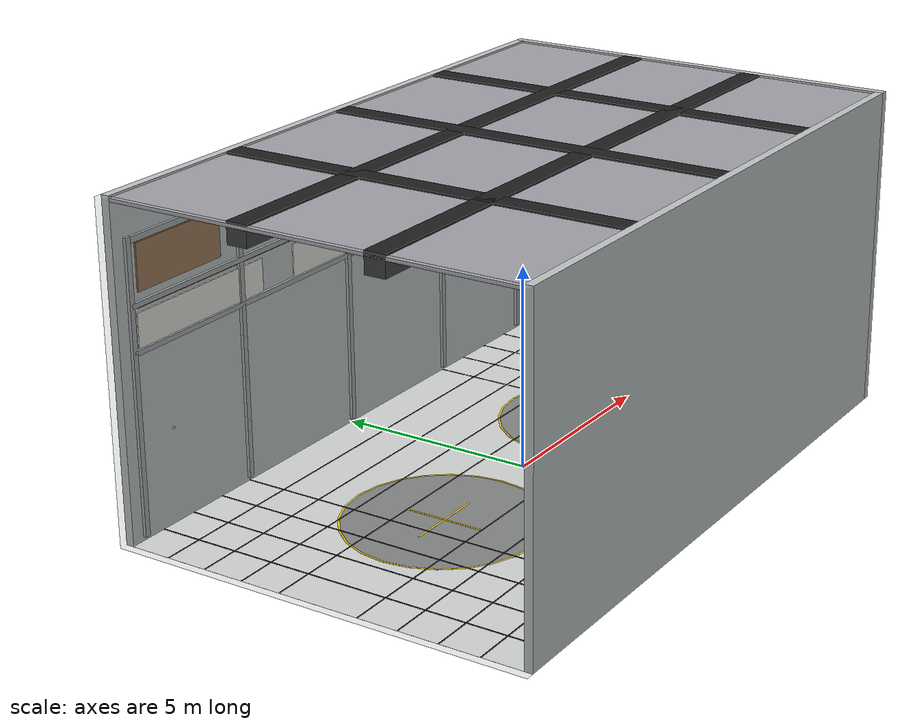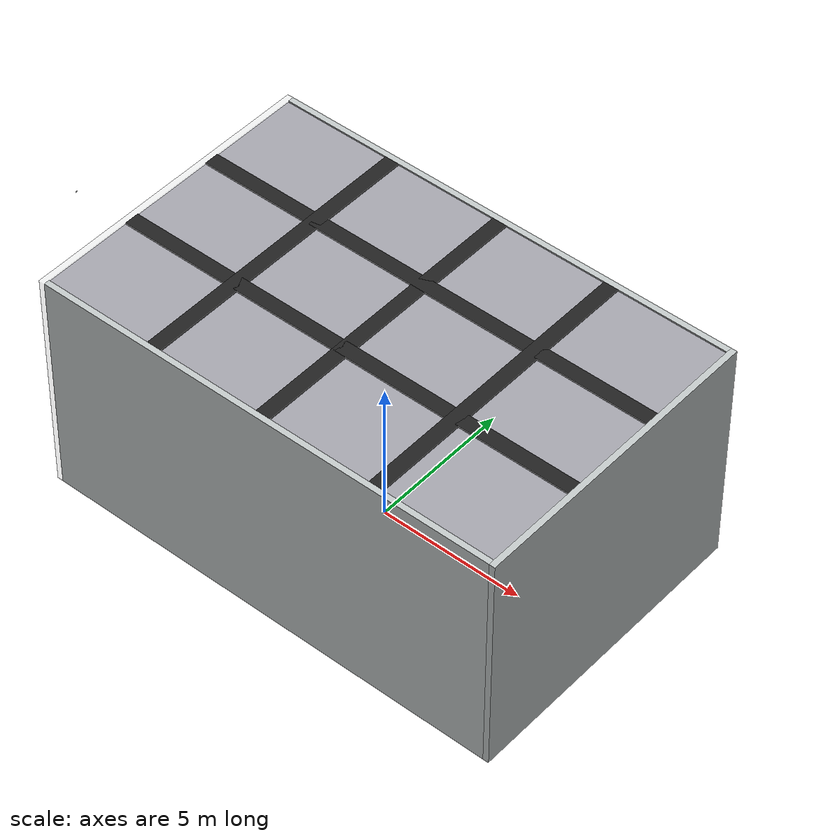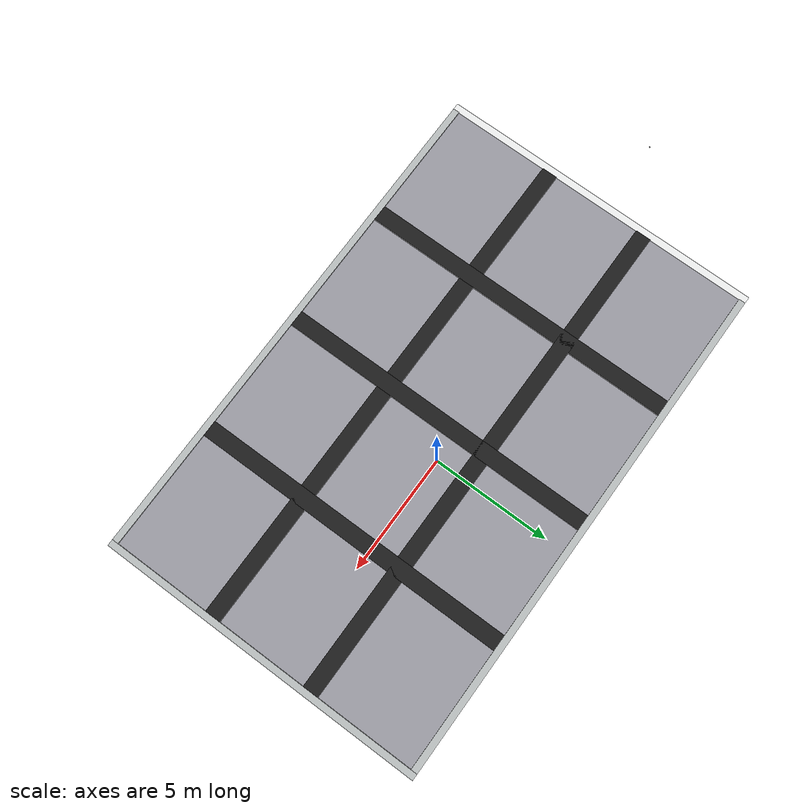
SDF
<sdf version="1.9">
 <world name="hangar_small">
  <physics type="ode">
   <max_step_size>0.004</max_step_size>
   <real_time_factor>1.0</real_time_factor>
   <real_time_update_rate>250</real_time_update_rate>
  </physics>
  <gravity>0 0 -9.8</gravity>
  <magnetic_field>6e-06 2.3e-05 -4.2e-05</magnetic_field>
  <atmosphere type="adiabatic"/>
  <scene>
   <grid>false</grid>
   <ambient>0.65 0.65 0.65 1</ambient>
   <background>0.35 0.35 0.35 1</background>
   <shadows>false</shadows>
  </scene>
  <model name="ground_plane">
   <static>true</static>
   <link name="link">
    <collision name="collision">
     <geometry><plane><normal>0 0 1</normal><size>16.0 10.0</size></plane></geometry>
    </collision>
   </link>
  </model>
  <model name="white_floor_visual">
   <static>true</static>
   <pose>0 0 0.0015 0 0 0</pose>
   <link name="floor">
    <visual name="white_floor">
     <geometry><box><size>16.0 10.0 0.001</size></box></geometry>
     <material>
      <ambient>0.92 0.92 0.92 1</ambient>
      <diffuse>0.92 0.92 0.92 1</diffuse>
      <specular>0.05 0.05 0.05 1</specular>
     </material>
    </visual>
   </link>
  </model>
  <model name="flow_feature_grid">
   <static>true</static>
   <pose>0 0 0.009 0 0 0</pose>
   <link name="grid">
    <visual name="gx_south_1">
     <visibility_flags>4</visibility_flags>
     <pose>-7.0 0 0 0 0 0</pose>
     <geometry><box><size>0.035 10.0 0.001</size></box></geometry>
     <material><ambient>0.03 0.03 0.03 1</ambient><diffuse>0.03 0.03 0.03 1</diffuse></material>
    </visual>
    <visual name="gx_south_2">
     <visibility_flags>4</visibility_flags>
     <pose>-6.0 0 0 0 0 0</pose>
     <geometry><box><size>0.035 10.0 0.001</size></box></geometry>
     <material><ambient>0.03 0.03 0.03 1</ambient><diffuse>0.03 0.03 0.03 1</diffuse></material>
    </visual>
    <visual name="gx_south_3">
     <visibility_flags>4</visibility_flags>
     <pose>-5.0 0 0 0 0 0</pose>
     <geometry><box><size>0.035 10.0 0.001</size></box></geometry>
     <material><ambient>0.03 0.03 0.03 1</ambient><diffuse>0.03 0.03 0.03 1</diffuse></material>
    </visual>
    <visual name="gx_south_4">
     <visibility_flags>4</visibility_flags>
     <pose>-4.0 0 0 0 0 0</pose>
     <geometry><box><size>0.035 10.0 0.001</size></box></geometry>
     <material><ambient>0.03 0.03 0.03 1</ambient><diffuse>0.03 0.03 0.03 1</diffuse></material>
    </visual>
    <visual name="gx_north_1">
     <visibility_flags>4</visibility_flags>
     <pose>4.0 0 0 0 0 0</pose>
     <geometry><box><size>0.035 10.0 0.001</size></box></geometry>
     <material><ambient>0.03 0.03 0.03 1</ambient><diffuse>0.03 0.03 0.03 1</diffuse></material>
    </visual>
    <visual name="gx_north_2">
     <visibility_flags>4</visibility_flags>
     <pose>5.0 0 0 0 0 0</pose>
     <geometry><box><size>0.035 10.0 0.001</size></box></geometry>
     <material><ambient>0.03 0.03 0.03 1</ambient><diffuse>0.03 0.03 0.03 1</diffuse></material>
    </visual>
    <visual name="gx_north_3">
     <visibility_flags>4</visibility_flags>
     <pose>6.0 0 0 0 0 0</pose>
     <geometry><box><size>0.035 10.0 0.001</size></box></geometry>
     <material><ambient>0.03 0.03 0.03 1</ambient><diffuse>0.03 0.03 0.03 1</diffuse></material>
    </visual>
    <visual name="gx_north_4">
     <visibility_flags>4</visibility_flags>
     <pose>7.0 0 0 0 0 0</pose>
     <geometry><box><size>0.035 10.0 0.001</size></box></geometry>
     <material><ambient>0.03 0.03 0.03 1</ambient><diffuse>0.03 0.03 0.03 1</diffuse></material>
    </visual>
    <visual name="gy_west_1">
     <visibility_flags>4</visibility_flags>
     <pose>0 -4.0 0 0 0 0</pose>
     <geometry><box><size>16.0 0.035 0.001</size></box></geometry>
     <material><ambient>0.03 0.03 0.03 1</ambient><diffuse>0.03 0.03 0.03 1</diffuse></material>
    </visual>
    <visual name="gy_west_2">
     <visibility_flags>4</visibility_flags>
     <pose>0 -3.0 0 0 0 0</pose>
     <geometry><box><size>16.0 0.035 0.001</size></box></geometry>
     <material><ambient>0.03 0.03 0.03 1</ambient><diffuse>0.03 0.03 0.03 1</diffuse></material>
    </visual>
    <visual name="gy_west_3">
     <visibility_flags>4</visibility_flags>
     <pose>0 -2.0 0 0 0 0</pose>
     <geometry><box><size>16.0 0.035 0.001</size></box></geometry>
     <material><ambient>0.03 0.03 0.03 1</ambient><diffuse>0.03 0.03 0.03 1</diffuse></material>
    </visual>
    <visual name="gy_west_4">
     <visibility_flags>4</visibility_flags>
     <pose>0 -1.0 0 0 0 0</pose>
     <geometry><box><size>16.0 0.035 0.001</size></box></geometry>
     <material><ambient>0.03 0.03 0.03 1</ambient><diffuse>0.03 0.03 0.03 1</diffuse></material>
    </visual>
    <visual name="gy_east_1">
     <visibility_flags>4</visibility_flags>
     <pose>0 1.0 0 0 0 0</pose>
     <geometry><box><size>16.0 0.035 0.001</size></box></geometry>
     <material><ambient>0.03 0.03 0.03 1</ambient><diffuse>0.03 0.03 0.03 1</diffuse></material>
    </visual>
    <visual name="gy_east_2">
     <visibility_flags>4</visibility_flags>
     <pose>0 2.0 0 0 0 0</pose>
     <geometry><box><size>16.0 0.035 0.001</size></box></geometry>
     <material><ambient>0.03 0.03 0.03 1</ambient><diffuse>0.03 0.03 0.03 1</diffuse></material>
    </visual>
    <visual name="gy_east_3">
     <visibility_flags>4</visibility_flags>
     <pose>0 3.0 0 0 0 0</pose>
     <geometry><box><size>16.0 0.035 0.001</size></box></geometry>
     <material><ambient>0.03 0.03 0.03 1</ambient><diffuse>0.03 0.03 0.03 1</diffuse></material>
    </visual>
    <visual name="gy_east_4">
     <visibility_flags>4</visibility_flags>
     <pose>0 4.0 0 0 0 0</pose>
     <geometry><box><size>16.0 0.035 0.001</size></box></geometry>
     <material><ambient>0.03 0.03 0.03 1</ambient><diffuse>0.03 0.03 0.03 1</diffuse></material>
    </visual>
   </link>
  </model>
  <model name="pad_1_ring">
   <static>true</static>
   <pose>-3.33 0 0.003 0 0 0</pose>
   <link name="link">
    <visual name="v">
     <visibility_flags>2</visibility_flags>
     <geometry><cylinder><radius>2.4</radius><length>0.002</length></cylinder></geometry>
     <material><ambient>1.0 0.85 0.0 1</ambient><diffuse>1.0 0.85 0.0 1</diffuse></material>
    </visual>
   </link>
  </model>
  <model name="pad_1_fill">
   <static>true</static>
   <pose>-3.33 0 0.004 0 0 0</pose>
   <link name="link">
    <visual name="v">
     <visibility_flags>2</visibility_flags>
     <geometry><cylinder><radius>2.35</radius><length>0.002</length></cylinder></geometry>
     <material><ambient>0.52 0.52 0.52 1</ambient><diffuse>0.52 0.52 0.52 1</diffuse></material>
    </visual>
   </link>
  </model>
  <model name="pad_1_cross_h">
   <static>true</static>
   <pose>-3.33 0 0.006 0 0 0</pose>
   <link name="link">
    <visual name="v">
     <visibility_flags>2</visibility_flags>
     <geometry><box><size>2.0 0.05 0.002</size></box></geometry>
     <material><ambient>1.0 0.85 0.0 1</ambient><diffuse>1.0 0.85 0.0 1</diffuse></material>
    </visual>
   </link>
  </model>
  <model name="pad_1_cross_v">
   <static>true</static>
   <pose>-3.33 0 0.006 0 0 0</pose>
   <link name="link">
    <visual name="v">
     <visibility_flags>2</visibility_flags>
     <geometry><box><size>0.05 2.0 0.002</size></box></geometry>
     <material><ambient>1.0 0.85 0.0 1</ambient><diffuse>1.0 0.85 0.0 1</diffuse></material>
    </visual>
   </link>
  </model>
  <model name="pad_2_ring">
   <static>true</static>
   <pose>3.33 0 0.003 0 0 0</pose>
   <link name="link">
    <visual name="v">
     <visibility_flags>2</visibility_flags>
     <geometry><cylinder><radius>2.4</radius><length>0.002</length></cylinder></geometry>
     <material><ambient>1.0 0.85 0.0 1</ambient><diffuse>1.0 0.85 0.0 1</diffuse></material>
    </visual>
   </link>
  </model>
  <model name="pad_2_fill">
   <static>true</static>
   <pose>3.33 0 0.004 0 0 0</pose>
   <link name="link">
    <visual name="v">
     <visibility_flags>2</visibility_flags>
     <geometry><cylinder><radius>2.35</radius><length>0.002</length></cylinder></geometry>
     <material><ambient>0.52 0.52 0.52 1</ambient><diffuse>0.52 0.52 0.52 1</diffuse></material>
    </visual>
   </link>
  </model>
  <model name="pad_2_cross_h">
   <static>true</static>
   <pose>3.33 0 0.006 0 0 0</pose>
   <link name="link">
    <visual name="v">
     <visibility_flags>2</visibility_flags>
     <geometry><box><size>2.0 0.05 0.002</size></box></geometry>
     <material><ambient>1.0 0.85 0.0 1</ambient><diffuse>1.0 0.85 0.0 1</diffuse></material>
    </visual>
   </link>
  </model>
  <model name="pad_2_cross_v">
   <static>true</static>
   <pose>3.33 0 0.006 0 0 0</pose>
   <link name="link">
    <visual name="v">
     <visibility_flags>2</visibility_flags>
     <geometry><box><size>0.05 2.0 0.002</size></box></geometry>
     <material><ambient>1.0 0.85 0.0 1</ambient><diffuse>1.0 0.85 0.0 1</diffuse></material>
    </visual>
   </link>
  </model>
  <model name="wall_north">
   <static>true</static>
   <pose>8.1 0 4.0 0 0 0</pose>
   <link name="link">
    <collision name="c"><geometry><box><size>0.2 10.4 8.0</size></box></geometry></collision>
    <visual name="v">
     <geometry><box><size>0.2 10.4 8.0</size></box></geometry>
     <material>
      <ambient>0.74 0.76 0.76 1</ambient>
      <diffuse>0.74 0.76 0.76 1</diffuse>
      <specular>0.20 0.20 0.20 1</specular>
      <emissive>0.06 0.06 0.06 1</emissive>
     </material>
    </visual>
   </link>
  </model>
  <model name="wall_south">
   <static>true</static>
   <pose>-8.1 0 4.0 0 0 0</pose>
   <link name="link">
    <collision name="c"><geometry><box><size>0.2 10.4 8.0</size></box></geometry></collision>
    <visual name="v">
     <visibility_flags>1</visibility_flags>
     <transparency>0.78</transparency>
     <geometry><box><size>0.2 10.4 8.0</size></box></geometry>
     <material>
      <ambient>0.74 0.76 0.76 0.22</ambient>
      <diffuse>0.74 0.76 0.76 0.22</diffuse>
      <specular>0.20 0.20 0.20 0.22</specular>
     </material>
    </visual>
   </link>
  </model>
  <model name="wall_east">
   <static>true</static>
   <pose>0 5.1 4.0 0 0 0</pose>
   <link name="link">
    <collision name="c"><geometry><box><size>16.0 0.2 8.0</size></box></geometry></collision>
    <visual name="v">
     <geometry><box><size>16.0 0.2 8.0</size></box></geometry>
     <material>
      <ambient>0.74 0.76 0.76 1</ambient>
      <diffuse>0.74 0.76 0.76 1</diffuse>
      <specular>0.20 0.20 0.20 1</specular>
      <emissive>0.06 0.06 0.06 1</emissive>
     </material>
    </visual>
   </link>
  </model>
  <model name="wall_west">
   <static>true</static>
   <pose>0 -5.1 4.0 0 0 0</pose>
   <link name="link">
    <collision name="c"><geometry><box><size>16.0 0.2 8.0</size></box></geometry></collision>
    <visual name="v">
     <geometry><box><size>16.0 0.2 8.0</size></box></geometry>
     <material>
      <ambient>0.74 0.76 0.76 1</ambient>
      <diffuse>0.74 0.76 0.76 1</diffuse>
      <specular>0.20 0.20 0.20 1</specular>
      <emissive>0.06 0.06 0.06 1</emissive>
     </material>
    </visual>
   </link>
  </model>
  <model name="wall_east_inner_structure">
   <static>true</static>
   <pose>0 4.98 0 0 0 0</pose>
   <link name="link">
    <visual name="clerestory_white_panel_1">
     <pose>-5.33 0 4.85 0 0 0</pose>
     <geometry><box><size>4.2 0.035 0.8</size></box></geometry>
     <material>
      <ambient>0.92 0.92 0.88 1</ambient>
      <diffuse>0.92 0.92 0.88 1</diffuse>
      <emissive>0.18 0.18 0.16 1</emissive>
     </material>
    </visual>
    <visual name="clerestory_white_panel_2">
     <pose>0.0 0 4.85 0 0 0</pose>
     <geometry><box><size>4.2 0.035 0.8</size></box></geometry>
     <material>
      <ambient>0.92 0.92 0.88 1</ambient>
      <diffuse>0.92 0.92 0.88 1</diffuse>
      <emissive>0.18 0.18 0.16 1</emissive>
     </material>
    </visual>
    <visual name="clerestory_white_panel_3">
     <pose>5.33 0 4.85 0 0 0</pose>
     <geometry><box><size>4.2 0.035 0.8</size></box></geometry>
     <material>
      <ambient>0.92 0.92 0.88 1</ambient>
      <diffuse>0.92 0.92 0.88 1</diffuse>
      <emissive>0.18 0.18 0.16 1</emissive>
     </material>
    </visual>
    <visual name="louver_panel_1">
     <pose>-6.0 0 6.25 0 0 0</pose>
     <geometry><box><size>2.7 0.04 1.1</size></box></geometry>
     <material>
      <ambient>0.58 0.39 0.22 1</ambient>
      <diffuse>0.58 0.39 0.22 1</diffuse>
      <specular>0.08 0.06 0.04 1</specular>
     </material>
    </visual>
    <visual name="louver_panel_2">
     <pose>-2.0 0 6.25 0 0 0</pose>
     <geometry><box><size>2.7 0.04 1.1</size></box></geometry>
     <material>
      <ambient>0.58 0.39 0.22 1</ambient>
      <diffuse>0.58 0.39 0.22 1</diffuse>
      <specular>0.08 0.06 0.04 1</specular>
     </material>
    </visual>
    <visual name="louver_panel_3">
     <pose>2.0 0 6.25 0 0 0</pose>
     <geometry><box><size>2.7 0.04 1.1</size></box></geometry>
     <material>
      <ambient>0.58 0.39 0.22 1</ambient>
      <diffuse>0.58 0.39 0.22 1</diffuse>
      <specular>0.08 0.06 0.04 1</specular>
     </material>
    </visual>
    <visual name="louver_panel_4">
     <pose>6.0 0 6.25 0 0 0</pose>
     <geometry><box><size>2.7 0.04 1.1</size></box></geometry>
     <material>
      <ambient>0.58 0.39 0.22 1</ambient>
      <diffuse>0.58 0.39 0.22 1</diffuse>
      <specular>0.08 0.06 0.04 1</specular>
     </material>
    </visual>
    <visual name="frame_post_1">
     <pose>-7.6 0 3.55 0 0 0</pose>
     <geometry><box><size>0.14 0.12 6.9</size></box></geometry>
     <material>
      <ambient>0.62 0.64 0.64 1</ambient>
      <diffuse>0.62 0.64 0.64 1</diffuse>
      <specular>0.25 0.25 0.25 1</specular>
      <emissive>0.04 0.04 0.04 1</emissive>
     </material>
    </visual>
    <visual name="frame_post_2">
     <pose>-4.0 0 3.55 0 0 0</pose>
     <geometry><box><size>0.14 0.12 6.9</size></box></geometry>
     <material>
      <ambient>0.62 0.64 0.64 1</ambient>
      <diffuse>0.62 0.64 0.64 1</diffuse>
      <specular>0.25 0.25 0.25 1</specular>
      <emissive>0.04 0.04 0.04 1</emissive>
     </material>
    </visual>
    <visual name="frame_post_3">
     <pose>0.0 0 3.55 0 0 0</pose>
     <geometry><box><size>0.14 0.12 6.9</size></box></geometry>
     <material>
      <ambient>0.62 0.64 0.64 1</ambient>
      <diffuse>0.62 0.64 0.64 1</diffuse>
      <specular>0.25 0.25 0.25 1</specular>
      <emissive>0.04 0.04 0.04 1</emissive>
     </material>
    </visual>
    <visual name="frame_post_4">
     <pose>4.0 0 3.55 0 0 0</pose>
     <geometry><box><size>0.14 0.12 6.9</size></box></geometry>
     <material>
      <ambient>0.62 0.64 0.64 1</ambient>
      <diffuse>0.62 0.64 0.64 1</diffuse>
      <specular>0.25 0.25 0.25 1</specular>
      <emissive>0.04 0.04 0.04 1</emissive>
     </material>
    </visual>
    <visual name="frame_post_5">
     <pose>7.6 0 3.55 0 0 0</pose>
     <geometry><box><size>0.14 0.12 6.9</size></box></geometry>
     <material>
      <ambient>0.62 0.64 0.64 1</ambient>
      <diffuse>0.62 0.64 0.64 1</diffuse>
      <specular>0.25 0.25 0.25 1</specular>
      <emissive>0.04 0.04 0.04 1</emissive>
     </material>
    </visual>
    <visual name="frame_bottom_rail">
     <pose>0 0 4.38 0 0 0</pose>
     <geometry><box><size>15.2 0.12 0.12</size></box></geometry>
     <material>
      <ambient>0.62 0.64 0.64 1</ambient>
      <diffuse>0.62 0.64 0.64 1</diffuse>
      <specular>0.25 0.25 0.25 1</specular>
      <emissive>0.04 0.04 0.04 1</emissive>
     </material>
    </visual>
    <visual name="frame_mid_rail">
     <pose>0 0 5.45 0 0 0</pose>
     <geometry><box><size>15.2 0.12 0.12</size></box></geometry>
     <material>
      <ambient>0.62 0.64 0.64 1</ambient>
      <diffuse>0.62 0.64 0.64 1</diffuse>
      <specular>0.25 0.25 0.25 1</specular>
      <emissive>0.04 0.04 0.04 1</emissive>
     </material>
    </visual>
    <visual name="frame_top_rail">
     <pose>0 0 6.92 0 0 0</pose>
     <geometry><box><size>15.2 0.12 0.14</size></box></geometry>
     <material>
      <ambient>0.62 0.64 0.64 1</ambient>
      <diffuse>0.62 0.64 0.64 1</diffuse>
      <specular>0.25 0.25 0.25 1</specular>
      <emissive>0.04 0.04 0.04 1</emissive>
     </material>
    </visual>
    <visual name="thin_red_pipe">
     <pose>0 -0.01 5.38 0 0 0</pose>
     <geometry><box><size>14.8 0.04 0.04</size></box></geometry>
     <material><ambient>0.45 0.12 0.07 1</ambient><diffuse>0.45 0.12 0.07 1</diffuse></material>
    </visual>
   </link>
  </model>
  <model name="pigeon_corner_shelf">
   <static>true</static>
   <pose>7.65 4.78 5.52 0 0 0</pose>
   <link name="link">
    <collision name="shelf_collision"><geometry><box><size>0.70 0.40 0.08</size></box></geometry></collision>
    <visual name="shelf_visual">
     <geometry><box><size>0.70 0.40 0.08</size></box></geometry>
     <material>
      <ambient>0.78 0.80 0.76 1</ambient>
      <diffuse>0.78 0.80 0.76 1</diffuse>
      <specular>0.18 0.18 0.16 1</specular>
      <emissive>0.10 0.10 0.09 1</emissive>
     </material>
    </visual>
    <collision name="left_bracket_collision">
     <pose>-0.22 0.14 -0.22 0 0 0</pose>
     <geometry><box><size>0.08 0.08 0.36</size></box></geometry>
    </collision>
    <visual name="left_bracket_visual">
     <pose>-0.22 0.14 -0.22 0 0 0</pose>
     <geometry><box><size>0.08 0.08 0.36</size></box></geometry>
     <material>
      <ambient>0.64 0.66 0.62 1</ambient>
      <diffuse>0.64 0.66 0.62 1</diffuse>
      <specular>0.16 0.16 0.14 1</specular>
      <emissive>0.06 0.06 0.05 1</emissive>
     </material>
    </visual>
    <collision name="right_bracket_collision">
     <pose>0.22 0.14 -0.22 0 0 0</pose>
     <geometry><box><size>0.08 0.08 0.36</size></box></geometry>
    </collision>
    <visual name="right_bracket_visual">
     <pose>0.22 0.14 -0.22 0 0 0</pose>
     <geometry><box><size>0.08 0.08 0.36</size></box></geometry>
     <material>
      <ambient>0.64 0.66 0.62 1</ambient>
      <diffuse>0.64 0.66 0.62 1</diffuse>
      <specular>0.16 0.16 0.14 1</specular>
      <emissive>0.06 0.06 0.05 1</emissive>
     </material>
    </visual>
   </link>
  </model>
  <model name="pigeon_corner_shelf_mirror">
   <static>true</static>
   <pose>7.65 -4.78 4.62 0 0 0</pose>
   <link name="link">
    <collision name="shelf_collision"><geometry><box><size>0.70 0.40 0.08</size></box></geometry></collision>
    <visual name="shelf_visual">
     <geometry><box><size>0.70 0.40 0.08</size></box></geometry>
     <material>
      <ambient>0.78 0.80 0.76 1</ambient>
      <diffuse>0.78 0.80 0.76 1</diffuse>
      <specular>0.18 0.18 0.16 1</specular>
      <emissive>0.10 0.10 0.09 1</emissive>
     </material>
    </visual>
    <collision name="left_bracket_collision">
     <pose>-0.22 -0.14 -0.22 0 0 0</pose>
     <geometry><box><size>0.08 0.08 0.36</size></box></geometry>
    </collision>
    <visual name="left_bracket_visual">
     <pose>-0.22 -0.14 -0.22 0 0 0</pose>
     <geometry><box><size>0.08 0.08 0.36</size></box></geometry>
     <material>
      <ambient>0.64 0.66 0.62 1</ambient>
      <diffuse>0.64 0.66 0.62 1</diffuse>
      <specular>0.16 0.16 0.14 1</specular>
      <emissive>0.06 0.06 0.05 1</emissive>
     </material>
    </visual>
    <collision name="right_bracket_collision">
     <pose>0.22 -0.14 -0.22 0 0 0</pose>
     <geometry><box><size>0.08 0.08 0.36</size></box></geometry>
    </collision>
    <visual name="right_bracket_visual">
     <pose>0.22 -0.14 -0.22 0 0 0</pose>
     <geometry><box><size>0.08 0.08 0.36</size></box></geometry>
     <material>
      <ambient>0.64 0.66 0.62 1</ambient>
      <diffuse>0.64 0.66 0.62 1</diffuse>
      <specular>0.16 0.16 0.14 1</specular>
      <emissive>0.06 0.06 0.05 1</emissive>
     </material>
    </visual>
   </link>
  </model>
  <model name="ceiling_beam_grid">
   <static>true</static>
   <link name="link">
    <collision name="c_small_m4">
     <pose>-4 0 7.75 0 0 0</pose>
     <geometry><box><size>0.5 10.0 0.5</size></box></geometry>
    </collision>
    <visual name="v_small_m4">
     <pose>-4 0 7.75 0 0 0</pose>
     <geometry><box><size>0.5 10.0 0.5</size></box></geometry>
     <material><ambient>0.12 0.12 0.12 1</ambient><diffuse>0.12 0.12 0.12 1</diffuse></material>
    </visual>
    <collision name="c_small_0">
     <pose>0 0 7.75 0 0 0</pose>
     <geometry><box><size>0.5 10.0 0.5</size></box></geometry>
    </collision>
    <visual name="v_small_0">
     <pose>0 0 7.75 0 0 0</pose>
     <geometry><box><size>0.5 10.0 0.5</size></box></geometry>
     <material><ambient>0.12 0.12 0.12 1</ambient><diffuse>0.12 0.12 0.12 1</diffuse></material>
    </visual>
    <collision name="c_small_4">
     <pose>4 0 7.75 0 0 0</pose>
     <geometry><box><size>0.5 10.0 0.5</size></box></geometry>
    </collision>
    <visual name="v_small_4">
     <pose>4 0 7.75 0 0 0</pose>
     <geometry><box><size>0.5 10.0 0.5</size></box></geometry>
     <material><ambient>0.12 0.12 0.12 1</ambient><diffuse>0.12 0.12 0.12 1</diffuse></material>
    </visual>
    <collision name="c_long_m1p7">
     <pose>0 -1.67 7.75 0 0 0</pose>
     <geometry><box><size>16.0 0.5 0.5</size></box></geometry>
    </collision>
    <visual name="v_long_m1p7">
     <pose>0 -1.67 7.75 0 0 0</pose>
     <geometry><box><size>16.0 0.5 0.5</size></box></geometry>
     <material><ambient>0.12 0.12 0.12 1</ambient><diffuse>0.12 0.12 0.12 1</diffuse></material>
    </visual>
    <collision name="c_long_1p7">
     <pose>0 1.67 7.75 0 0 0</pose>
     <geometry><box><size>16.0 0.5 0.5</size></box></geometry>
    </collision>
    <visual name="v_long_1p7">
     <pose>0 1.67 7.75 0 0 0</pose>
     <geometry><box><size>16.0 0.5 0.5</size></box></geometry>
     <material><ambient>0.12 0.12 0.12 1</ambient><diffuse>0.12 0.12 0.12 1</diffuse></material>
    </visual>
   </link>
  </model>
  <model name="ceiling_mesh_net_collision">
   <static>true</static>
   <pose>0 0 7.91 0 0 0</pose>
   <link name="link">
    <collision name="c"><geometry><box><size>16.0 10.0 0.08</size></box></geometry></collision>
    <visual name="rangefinder_target">
     <geometry><box><size>16.0 10.0 0.08</size></box></geometry>
     <material>
      <ambient>0.62 0.62 0.65 1</ambient>
      <diffuse>0.62 0.62 0.65 1</diffuse>
      <specular>0.05 0.05 0.05 1</specular>
     </material>
    </visual>
   </link>
  </model>
  <model name="roof_panels">
   <static>true</static>
   <pose>0 0 8.1 0 0 0</pose>
   <link name="link">
    <visual name="v">
     <geometry><plane><normal>0 0 1</normal><size>16.0 10.0</size></plane></geometry>
     <material><ambient>0.65 0.65 0.68 1</ambient><diffuse>0.65 0.65 0.68 1</diffuse></material>
    </visual>
   </link>
  </model>
  <light name="light_bay_left" type="point">
   <pose>-4 0 7.8 0 0 0</pose>
   <cast_shadows>false</cast_shadows>
   <intensity>1.2</intensity>
   <diffuse>0.95 0.95 0.95 1</diffuse>
   <specular>0.15 0.15 0.15 1</specular>
   <attenuation>
    <range>16</range>
    <linear>0.04</linear>
    <constant>0.7</constant>
    <quadratic>0.003</quadratic>
   </attenuation>
  </light>
  <light name="light_bay_right" type="point">
   <pose>4 0 7.8 0 0 0</pose>
   <cast_shadows>false</cast_shadows>
   <intensity>1.2</intensity>
   <diffuse>0.95 0.95 0.95 1</diffuse>
   <specular>0.15 0.15 0.15 1</specular>
   <attenuation>
    <range>16</range>
    <linear>0.04</linear>
    <constant>0.7</constant>
    <quadratic>0.003</quadratic>
   </attenuation>
  </light>
  <include><uri>model://pigeon_3d</uri><name>pigeon_1</name><pose>7.65 4.76 5.90 0 0 -3.1416</pose></include>
  <include>
   <uri>model://mono_cam_hd</uri>
   <name>fixed_cam</name>
   <pose>-12 0 5.5 0 0.4 0</pose>
   <static>true</static>
  </include>
  <include>
   <uri>model://mono_cam_hd</uri>
   <name>center_cam</name>
   <pose>4.33 -3 7 0 1.5708 0</pose>
   <static>true</static>
  </include>
  <spherical_coordinates>
   <surface_model>EARTH_WGS84</surface_model>
   <latitude_deg>0</latitude_deg>
   <longitude_deg>0</longitude_deg>
   <elevation>0</elevation>
  </spherical_coordinates>
 </world>
</sdf>

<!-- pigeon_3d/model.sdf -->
<sdf version="1.9">
  <model name="pigeon_3d">
    <static>true</static>
    <link name="body">
      <!-- GLB (Sketchfab Y_UP) → Gazebo Z_UP: roll=+1.5708; yaw=3.14159 faces -X toward drone -->
      <!-- Scale 1.0 to start — adjust after first launch -->
      <visual name="visual">
        <pose>0 0 0 1.5708 0 3.14159</pose>
        <geometry>
          <mesh>
            <uri>model://pigeon_3d/meshes/pigeon.glb</uri>
            <scale>0.16 0.16 0.16</scale>
          </mesh>
        </geometry>
      </visual>
      <collision name="collision">
        <geometry>
          <box><size>0.32 0.12 0.12</size></box>
        </geometry>
      </collision>
    </link>
  </model>
</sdf>

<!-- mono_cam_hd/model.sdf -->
<sdf version='1.9'>
  <model name='mono_cam_hd'>
    <pose>0 0 0 0 0 0</pose>
    <self_collide>false</self_collide>
    <static>false</static>
    <link name="camera_link">
      <inertial>
        <pose>0.03 0.03 0.03 0 0 0</pose>
        <mass>0.050</mass>
        <inertia>
          <ixx>0.00004</ixx>
          <ixy>0</ixy>
          <ixz>0</ixz>
          <iyy>0.00004</iyy>
          <iyz>0</iyz>
          <izz>0.00004</izz>
        </inertia>
      </inertial>
      <visual name="mono_cam_hd/visual/housing">
        <geometry>
          <box>
            <size>0.02 0.04 0.04</size>
          </box>
        </geometry>
      </visual>
      <visual name="mono_cam_hd/visual/lens">
        <pose>0.015 0 0 0 1.5707 0</pose>
        <geometry>
          <cylinder>
            <radius>0.008</radius>
            <length>0.01</length>
          </cylinder>
        </geometry>
      </visual>
      <visual name="mono_cam_hd/visual/lens_glass">
        <pose>0.014 0 0 0 0 0</pose>
        <geometry>
          <sphere>
            <radius>0.0079</radius>
          </sphere>
        </geometry>
        <material>
          <ambient>.4 .4 .5 .95</ambient>
          <diffuse>.4 .4 .5 .95</diffuse>
          <specular>1 1 1 1</specular>
          <emissive>0 0 0 1</emissive>
        </material>
      </visual>
      <sensor name="camera" type="camera">
        <gz_frame_id>camera_link</gz_frame_id>
        <pose>0 0 0 0 0 0</pose>
        <camera>
          <horizontal_fov>1.74</horizontal_fov>
          <image>
            <width>1920</width>
            <height>1080</height>
          </image>
          <clip>
            <near>0.1</near>
            <far>100</far>
          </clip>
          <anti_aliasing>4</anti_aliasing>
          <visibility_mask>3</visibility_mask>
        </camera>
        <always_on>1</always_on>
        <update_rate>6</update_rate>
        <visualize>true</visualize>
      </sensor>
      <gravity>true</gravity>
      <velocity_decay />
    </link>
  </model>
</sdf>
